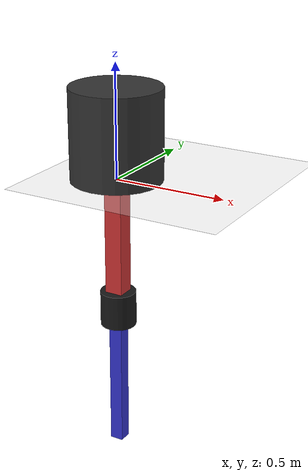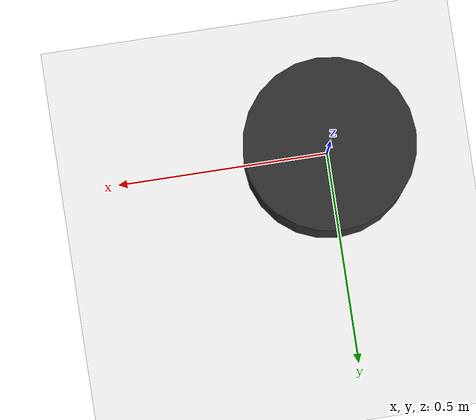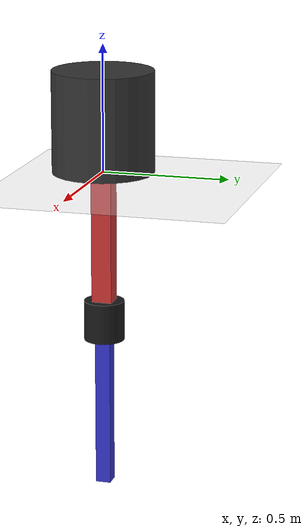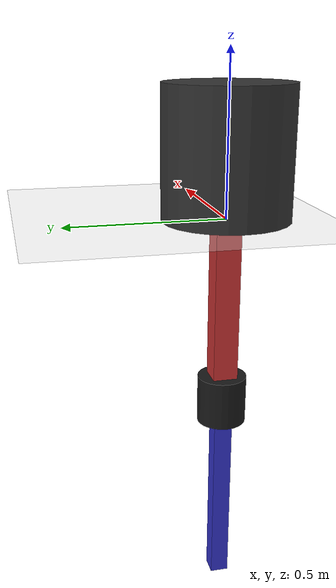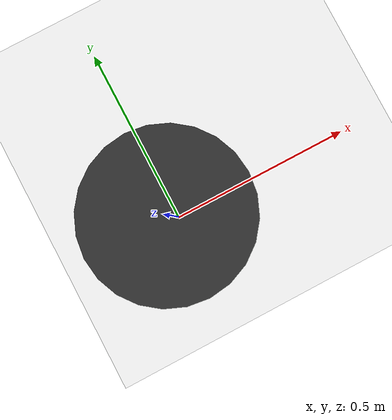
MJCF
<mujoco model="industrial_2dof_arm">

    <option gravity="0 0 -9.81"
            timestep="0.002"
            integrator="RK4"/>

    <visual>
        <map znear="0.01"/>
    </visual>

    <worldbody>

        <!-- Ground -->
        <geom type="plane"
              size="5 5 0.1"
              rgba="0.9 0.9 0.9 1"/>

        <!-- Lighting -->
        <light pos="0 0 3"
               dir="0 0 -1"/>

        <!-- Base -->
        <body name="base" pos="0 0 0.2">
            <geom type="cylinder"
                  size="0.2 0.2"
                  rgba="0.2 0.2 0.2 1"/>

            <!-- Joint 1 -->
            <body name="joint1_body" pos="0 0 0">
                <joint name="joint1"
                       type="hinge"
                       axis="0 1 0"
                       damping="0.6"/>

                <geom type="cylinder"
                      size="0.1 0.1"
                      rgba="0.1 0.1 0.1 1"/>

                <!-- Link 1 -->
                <body name="link1" pos="0 0 -0.1">
                    <geom type="box"
                          size="0.04 0.04 0.35"
                          pos="0 0 -0.35"
                          rgba="0.8 0.2 0.2 1"
                          density="500"/>

                    <!-- Joint 2 -->
                    <body name="joint2_body" pos="0 0 -0.7">
                        <joint name="joint2"
                               type="hinge"
                               axis="0 1 0"
                               damping="0.6"/>

                        <geom type="cylinder"
                              size="0.08 0.08"
                              rgba="0.1 0.1 0.1 1"/>

                        <!-- Link 2 -->
                        <body name="link2" pos="0 0 -0.08">
                            <geom type="box"
                                  size="0.03 0.03 0.30"
                                  pos="0 0 -0.30"
                                  rgba="0.2 0.2 0.8 1"
                                  density="500"/>
                        </body>

                    </body>
                </body>

            </body>
        </body>

    </worldbody>

    <!-- Strong Actuators -->
    <actuator>
        <motor joint="joint1" ctrlrange="-500 500"/>
        <motor joint="joint2" ctrlrange="-500 500"/>
    </actuator>

</mujoco>
